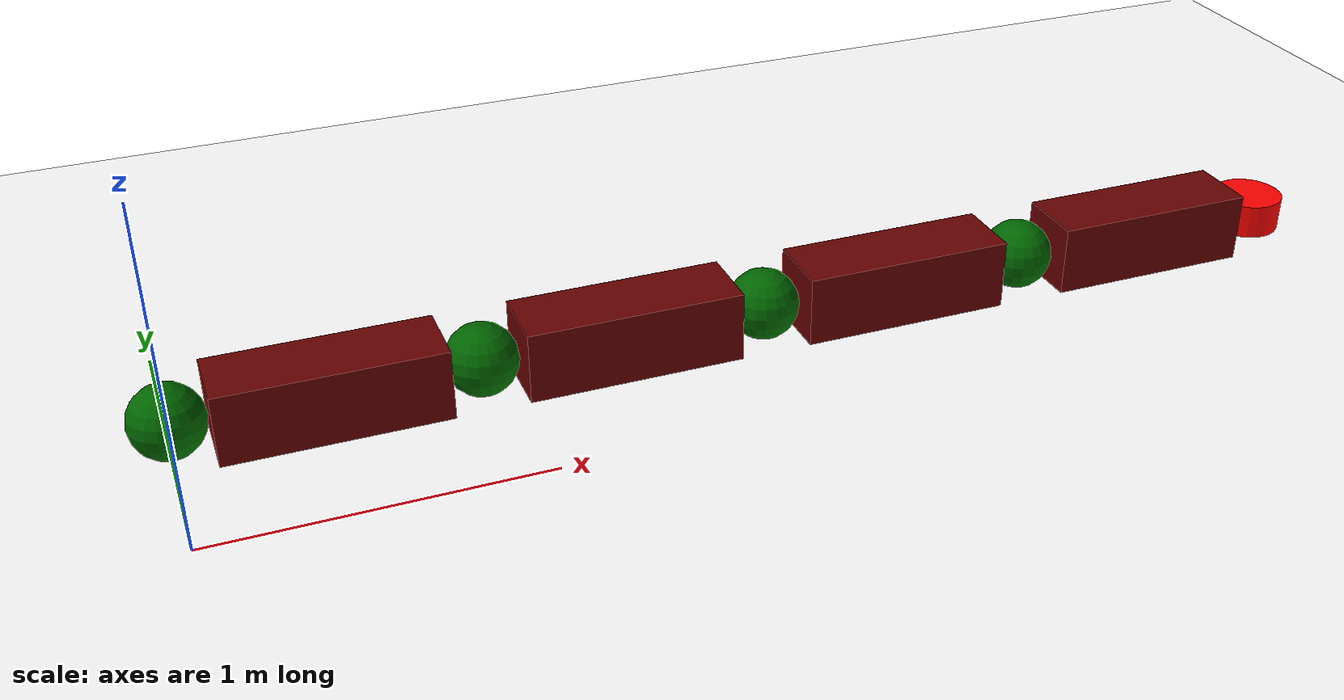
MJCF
<mujoco>
    <compiler angle="degree"/>
    <visual>
        <headlight ambient="0.5 0.5 0.5"/>
    </visual>
    <asset>
        <material name="white" rgba="1 1 1 1"/>
    </asset>
    <option timestep="0.001" gravity="0 0 0"/>
    <worldbody>
        <light diffuse=".5 .5 .5" pos="0 0 3" dir="0 0 -1"/>

        <geom name="Floor" type="plane" size="0 0 0.1" rgba="1 1 1 1"/>

        <body name="A" pos="0 0 0.2" euler="0 0 0">
            <inertial mass="40" pos="0 0 0" diaginertia="0.00005 0.00005 0.00005"/>
            <joint name="A_j" pos="0 0 0" type="hinge" axis="0 1 0"/>
            <geom type="sphere" pos="0 0 0.2" size="0.1" rgba="0 0.4 0 1"/>
            <geom type="box" pos="0.4 0 0.2" size="0.3 0.1 0.1" rgba="0.4 0 0 1" contype="0" conaffinity="0"/>

            <body name="B" pos="0.8 0 0.2" euler="0 0 0">
                <inertial mass="20" pos="0 0 0" diaginertia="0.00005 0.00005 0.00005"/>
                <joint name="B_j" pos="0 0 0" type="hinge" axis="0 1 0"/>
                <geom type="sphere" pos="0 0 0" size="0.1" rgba="0 0.4 0 1" contype="0" conaffinity="0"/>
                <geom type="box" pos="0.4 0 0" size="0.3 0.1 0.1" rgba="0.4 0 0 1" contype="0" conaffinity="0"/>

                <body name="C" pos="0.8 0 0.0" euler="0 0 0">
                    <inertial mass="10" pos="0 0 0" diaginertia="0.00005 0.00005 0.00005"/>
                    <joint name="C_j" pos="0 0 0" type="hinge" axis="0 1 0"/>
                    <geom type="sphere" pos="0 0 0" size="0.1" rgba="0 0.4 0 1"/>
                    <geom type="box" pos="0.4 0 0" size="0.3 0.1 0.1" rgba="0.4 0 0 1" contype="0" conaffinity="0"/>

                    <body name="D" pos="0.8 0 0.0" euler="0 0 0">
                        <inertial mass="10" pos="0 0 0" diaginertia="0.00005 0.00005 0.00005"/>
                        <joint name="D_j" pos="0 0 0" type="hinge" axis="0 1 0"/>
                        <geom type="sphere" pos="0 0 0" size="0.1" rgba="0 0.4 0 1"/>
                        <geom type="box" pos="0.4 0 0" size="0.3 0.1 0.1" rgba="0.4 0 0 1"/>
                        <site name="FTsensor" type="cylinder" pos="0.8 0 0" size="0.1 0.05" rgba="1 0 0 1"/>
                </body>
                </body>
            </body>
        </body>

    </worldbody>
    <actuator>
        <motor name="J1" ctrllimited="true" ctrlrange="-90 90" gear="1 0 0 0 0 0" joint="A_j"/>
        <motor name="J2" ctrllimited="true" ctrlrange="-150 150" gear="1 0 0 0 0 0" joint="B_j"/>
        <motor name="J3" ctrllimited="true" ctrlrange="-150 150" gear="1 0 0 0 0 0" joint="C_j"/>
        <motor name="J4" ctrllimited="true" ctrlrange="-150 150" gear="1 0 0 0 0 0" joint="D_j"/>
    </actuator>
</mujoco>
